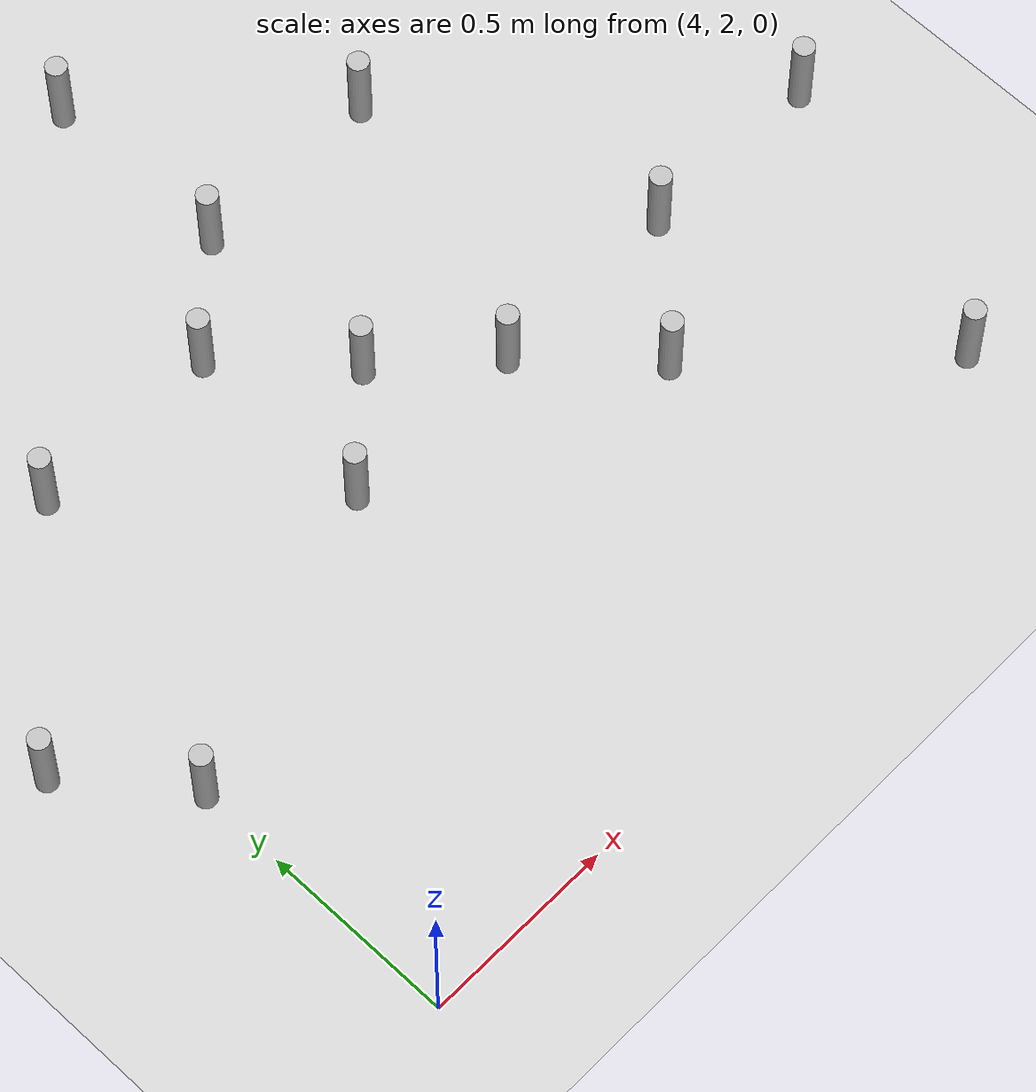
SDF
<sdf version="1.6">
 <world name="default">
  <model name="ground_plane">
   <static>1</static>
   <link name="link">
    <collision name="collision">
     <geometry><plane><normal>0 0 1</normal><size>100 100</size></plane></geometry>
     <surface><friction><ode><mu>100</mu><mu2>50</mu2></ode></friction></surface>
    </collision>
    <visual name="visual">
     <cast_shadows>0</cast_shadows>
     <geometry><plane><normal>0 0 1</normal><size>100 100</size></plane></geometry>
     <material>
      <script><uri>file://media/materials/scripts/gazebo.material</uri><name>Gazebo/Grey</name></script>
     </material>
    </visual>
   </link>
  </model>
  <model name="can4.259239740993.5">
   <link name="link">
    <pose>0 0 0.115 0 -0 0</pose>
    <inertial>
     <mass>0.39</mass>
     <inertia><ixx>0.00058</ixx><ixy>0</ixy><ixz>0</ixz><iyy>0.00058</iyy><iyz>0</iyz><izz>0.00019</izz></inertia>
    </inertial>
    <collision name="collision">
     <geometry><cylinder><radius>0.0275</radius><length>0.23</length></cylinder></geometry>
    </collision>
    <visual name="visual">
     <geometry><cylinder><radius>0.0275</radius><length>0.23</length></cylinder></geometry>
     <material>
      <script>
       <uri>model://beer/materials/scripts</uri>
       <uri>model://beer/materials/textures</uri>
       <name>Beer/Diffuse</name>
      </script>
     </material>
    </visual>
   </link>
   <pose>4.25923974099 3.5 -2e-06 1e-06 0 -9.5e-05</pose>
  </model>
  <model name="can5.76251627113.0">
   <link name="link">
    <pose>0 0 0.115 0 -0 0</pose>
    <inertial>
     <mass>0.39</mass>
     <inertia><ixx>0.00058</ixx><ixy>0</ixy><ixz>0</ixz><iyy>0.00058</iyy><iyz>0</iyz><izz>0.00019</izz></inertia>
    </inertial>
    <collision name="collision">
     <geometry><cylinder><radius>0.0275</radius><length>0.23</length></cylinder></geometry>
    </collision>
    <visual name="visual">
     <geometry><cylinder><radius>0.0275</radius><length>0.23</length></cylinder></geometry>
     <material>
      <script>
       <uri>model://beer/materials/scripts</uri>
       <uri>model://beer/materials/textures</uri>
       <name>Beer/Diffuse</name>
      </script>
     </material>
    </visual>
   </link>
   <pose>5.7625162711 3.0 -2e-06 1e-06 0 -9.5e-05</pose>
  </model>
  <model name="can5.52.7180750364">
   <link name="link">
    <pose>0 0 0.115 0 -0 0</pose>
    <inertial>
     <mass>0.39</mass>
     <inertia><ixx>0.00058</ixx><ixy>0</ixy><ixz>0</ixz><iyy>0.00058</iyy><iyz>0</iyz><izz>0.00019</izz></inertia>
    </inertial>
    <collision name="collision">
     <geometry><cylinder><radius>0.0275</radius><length>0.23</length></cylinder></geometry>
    </collision>
    <visual name="visual">
     <geometry><cylinder><radius>0.0275</radius><length>0.23</length></cylinder></geometry>
     <material>
      <script>
       <uri>model://beer/materials/scripts</uri>
       <uri>model://beer/materials/textures</uri>
       <name>Beer/Diffuse</name>
      </script>
     </material>
    </visual>
   </link>
   <pose>5.5 2.7180750364 -2e-06 1e-06 0 -9.5e-05</pose>
  </model>
  <model name="can5.03.71855957263">
   <link name="link">
    <pose>0 0 0.115 0 -0 0</pose>
    <inertial>
     <mass>0.39</mass>
     <inertia><ixx>0.00058</ixx><ixy>0</ixy><ixz>0</ixz><iyy>0.00058</iyy><iyz>0</iyz><izz>0.00019</izz></inertia>
    </inertial>
    <collision name="collision">
     <geometry><cylinder><radius>0.0275</radius><length>0.23</length></cylinder></geometry>
    </collision>
    <visual name="visual">
     <geometry><cylinder><radius>0.0275</radius><length>0.23</length></cylinder></geometry>
     <material>
      <script>
       <uri>model://beer/materials/scripts</uri>
       <uri>model://beer/materials/textures</uri>
       <name>Beer/Diffuse</name>
      </script>
     </material>
    </visual>
   </link>
   <pose>5.0 3.71855957263 -2e-06 1e-06 0 -9.5e-05</pose>
  </model>
  <model name="can4.75658909583.5">
   <link name="link">
    <pose>0 0 0.115 0 -0 0</pose>
    <inertial>
     <mass>0.39</mass>
     <inertia><ixx>0.00058</ixx><ixy>0</ixy><ixz>0</ixz><iyy>0.00058</iyy><iyz>0</iyz><izz>0.00019</izz></inertia>
    </inertial>
    <collision name="collision">
     <geometry><cylinder><radius>0.0275</radius><length>0.23</length></cylinder></geometry>
    </collision>
    <visual name="visual">
     <geometry><cylinder><radius>0.0275</radius><length>0.23</length></cylinder></geometry>
     <material>
      <script>
       <uri>model://beer/materials/scripts</uri>
       <uri>model://beer/materials/textures</uri>
       <name>Beer/Diffuse</name>
      </script>
     </material>
    </visual>
   </link>
   <pose>4.7565890958 3.5 -2e-06 1e-06 0 -9.5e-05</pose>
  </model>
  <model name="can6.02.24278204279">
   <link name="link">
    <pose>0 0 0.115 0 -0 0</pose>
    <inertial>
     <mass>0.39</mass>
     <inertia><ixx>0.00058</ixx><ixy>0</ixy><ixz>0</ixz><iyy>0.00058</iyy><iyz>0</iyz><izz>0.00019</izz></inertia>
    </inertial>
    <collision name="collision">
     <geometry><cylinder><radius>0.0275</radius><length>0.23</length></cylinder></geometry>
    </collision>
    <visual name="visual">
     <geometry><cylinder><radius>0.0275</radius><length>0.23</length></cylinder></geometry>
     <material>
      <script>
       <uri>model://beer/materials/scripts</uri>
       <uri>model://beer/materials/textures</uri>
       <name>Beer/Diffuse</name>
      </script>
     </material>
    </visual>
   </link>
   <pose>6.0 2.24278204279 -2e-06 1e-06 0 -9.5e-05</pose>
  </model>
  <model name="can5.03.21980605687">
   <link name="link">
    <pose>0 0 0.115 0 -0 0</pose>
    <inertial>
     <mass>0.39</mass>
     <inertia><ixx>0.00058</ixx><ixy>0</ixy><ixz>0</ixz><iyy>0.00058</iyy><iyz>0</iyz><izz>0.00019</izz></inertia>
    </inertial>
    <collision name="collision">
     <geometry><cylinder><radius>0.0275</radius><length>0.23</length></cylinder></geometry>
    </collision>
    <visual name="visual">
     <geometry><cylinder><radius>0.0275</radius><length>0.23</length></cylinder></geometry>
     <material>
      <script>
       <uri>model://beer/materials/scripts</uri>
       <uri>model://beer/materials/textures</uri>
       <name>Beer/Diffuse</name>
      </script>
     </material>
    </visual>
   </link>
   <pose>5.0 3.21980605687 -2e-06 1e-06 0 -9.5e-05</pose>
  </model>
  <model name="can6.253275956473.0">
   <link name="link">
    <pose>0 0 0.115 0 -0 0</pose>
    <inertial>
     <mass>0.39</mass>
     <inertia><ixx>0.00058</ixx><ixy>0</ixy><ixz>0</ixz><iyy>0.00058</iyy><iyz>0</iyz><izz>0.00019</izz></inertia>
    </inertial>
    <collision name="collision">
     <geometry><cylinder><radius>0.0275</radius><length>0.23</length></cylinder></geometry>
    </collision>
    <visual name="visual">
     <geometry><cylinder><radius>0.0275</radius><length>0.23</length></cylinder></geometry>
     <material>
      <script>
       <uri>model://beer/materials/scripts</uri>
       <uri>model://beer/materials/textures</uri>
       <name>Beer/Diffuse</name>
      </script>
     </material>
    </visual>
   </link>
   <pose>6.25327595647 3.0 -2e-06 1e-06 0 -9.5e-05</pose>
  </model>
  <model name="can5.252978216523.0">
   <link name="link">
    <pose>0 0 0.115 0 -0 0</pose>
    <inertial>
     <mass>0.39</mass>
     <inertia><ixx>0.00058</ixx><ixy>0</ixy><ixz>0</ixz><iyy>0.00058</iyy><iyz>0</iyz><izz>0.00019</izz></inertia>
    </inertial>
    <collision name="collision">
     <geometry><cylinder><radius>0.0275</radius><length>0.23</length></cylinder></geometry>
    </collision>
    <visual name="visual">
     <geometry><cylinder><radius>0.0275</radius><length>0.23</length></cylinder></geometry>
     <material>
      <script>
       <uri>model://beer/materials/scripts</uri>
       <uri>model://beer/materials/textures</uri>
       <name>Beer/Diffuse</name>
      </script>
     </material>
    </visual>
   </link>
   <pose>5.25297821652 3.0 -2e-06 1e-06 0 -9.5e-05</pose>
  </model>
  <model name="can4.758704319083.0">
   <link name="link">
    <pose>0 0 0.115 0 -0 0</pose>
    <inertial>
     <mass>0.39</mass>
     <inertia><ixx>0.00058</ixx><ixy>0</ixy><ixz>0</ixz><iyy>0.00058</iyy><iyz>0</iyz><izz>0.00019</izz></inertia>
    </inertial>
    <collision name="collision">
     <geometry><cylinder><radius>0.0275</radius><length>0.23</length></cylinder></geometry>
    </collision>
    <visual name="visual">
     <geometry><cylinder><radius>0.0275</radius><length>0.23</length></cylinder></geometry>
     <material>
      <script>
       <uri>model://beer/materials/scripts</uri>
       <uri>model://beer/materials/textures</uri>
       <name>Beer/Diffuse</name>
      </script>
     </material>
    </visual>
   </link>
   <pose>4.75870431908 3.0 -2e-06 1e-06 0 -9.5e-05</pose>
  </model>
  <model name="can5.04.22168445124">
   <link name="link">
    <pose>0 0 0.115 0 -0 0</pose>
    <inertial>
     <mass>0.39</mass>
     <inertia><ixx>0.00058</ixx><ixy>0</ixy><ixz>0</ixz><iyy>0.00058</iyy><iyz>0</iyz><izz>0.00019</izz></inertia>
    </inertial>
    <collision name="collision">
     <geometry><cylinder><radius>0.0275</radius><length>0.23</length></cylinder></geometry>
    </collision>
    <visual name="visual">
     <geometry><cylinder><radius>0.0275</radius><length>0.23</length></cylinder></geometry>
     <material>
      <script>
       <uri>model://beer/materials/scripts</uri>
       <uri>model://beer/materials/textures</uri>
       <name>Beer/Diffuse</name>
      </script>
     </material>
    </visual>
   </link>
   <pose>5.0 4.22168445124 -2e-06 1e-06 0 -9.5e-05</pose>
  </model>
  <model name="can5.53.72315293995">
   <link name="link">
    <pose>0 0 0.115 0 -0 0</pose>
    <inertial>
     <mass>0.39</mass>
     <inertia><ixx>0.00058</ixx><ixy>0</ixy><ixz>0</ixz><iyy>0.00058</iyy><iyz>0</iyz><izz>0.00019</izz></inertia>
    </inertial>
    <collision name="collision">
     <geometry><cylinder><radius>0.0275</radius><length>0.23</length></cylinder></geometry>
    </collision>
    <visual name="visual">
     <geometry><cylinder><radius>0.0275</radius><length>0.23</length></cylinder></geometry>
     <material>
      <script>
       <uri>model://beer/materials/scripts</uri>
       <uri>model://beer/materials/textures</uri>
       <name>Beer/Diffuse</name>
      </script>
     </material>
    </visual>
   </link>
   <pose>5.5 3.72315293995 -2e-06 1e-06 0 -9.5e-05</pose>
  </model>
  <model name="can4.02.71837056435">
   <link name="link">
    <pose>0 0 0.115 0 -0 0</pose>
    <inertial>
     <mass>0.39</mass>
     <inertia><ixx>0.00058</ixx><ixy>0</ixy><ixz>0</ixz><iyy>0.00058</iyy><iyz>0</iyz><izz>0.00019</izz></inertia>
    </inertial>
    <collision name="collision">
     <geometry><cylinder><radius>0.0275</radius><length>0.23</length></cylinder></geometry>
    </collision>
    <visual name="visual">
     <geometry><cylinder><radius>0.0275</radius><length>0.23</length></cylinder></geometry>
     <material>
      <script>
       <uri>model://beer/materials/scripts</uri>
       <uri>model://beer/materials/textures</uri>
       <name>Beer/Diffuse</name>
      </script>
     </material>
    </visual>
   </link>
   <pose>4.0 2.71837056435 -2e-06 1e-06 0 -9.5e-05</pose>
  </model>
  <model name="can3.782545917933.0">
   <link name="link">
    <pose>0 0 0.115 0 -0 0</pose>
    <inertial>
     <mass>0.39</mass>
     <inertia><ixx>0.00058</ixx><ixy>0</ixy><ixz>0</ixz><iyy>0.00058</iyy><iyz>0</iyz><izz>0.00019</izz></inertia>
    </inertial>
    <collision name="collision">
     <geometry><cylinder><radius>0.0275</radius><length>0.23</length></cylinder></geometry>
    </collision>
    <visual name="visual">
     <geometry><cylinder><radius>0.0275</radius><length>0.23</length></cylinder></geometry>
     <material>
      <script>
       <uri>model://beer/materials/scripts</uri>
       <uri>model://beer/materials/textures</uri>
       <name>Beer/Diffuse</name>
      </script>
     </material>
    </visual>
   </link>
   <pose>3.78254591793 3.0 -2e-06 1e-06 0 -9.5e-05</pose>
  </model>
 </world>
</sdf>
